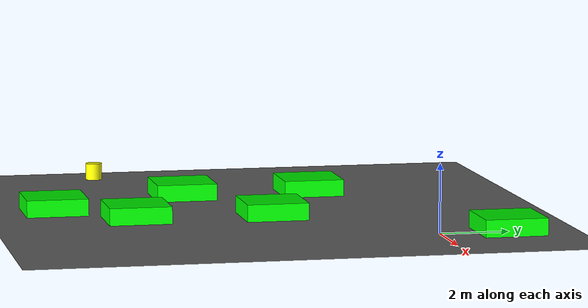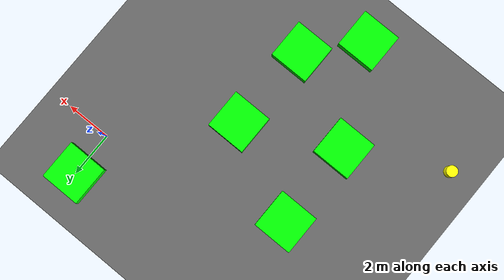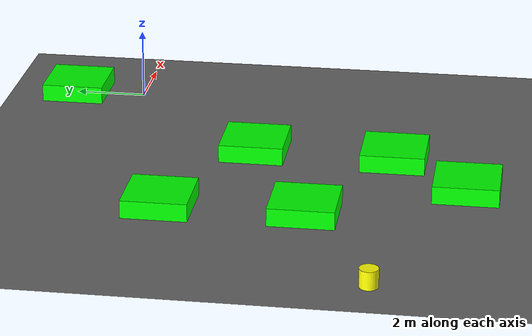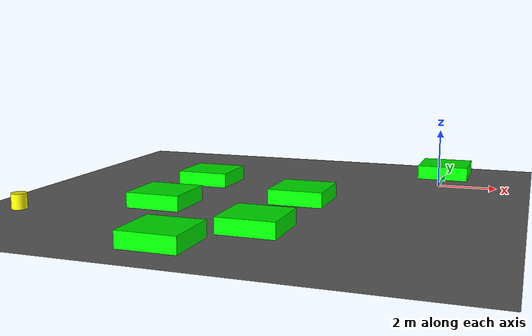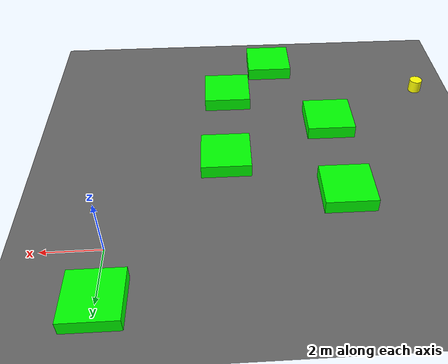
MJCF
<mujoco model="lvl4_standard_obs6_d3long_seed130">
    <compiler angle="degree" coordinate="local" inertiafromgeom="true"/>
    <option integrator="RK4" timestep="0.01"/>

    <asset>
        <texture builtin="gradient" height="100" rgb1="0.6 0.8 1" rgb2="0 0 0" type="skybox" width="100"/>
        <texture name="floor_texture" type="2d" builtin="checker" width="100" height="100" rgb1="0 0 0" rgb2="0.8 0.8 0.8"/>
        <material name="MatPlane" reflectance="0.5" shininess="1" specular="1" texrepeat="10 10" texture="floor_texture"/>
    </asset>

    <!-- Excluding the contact between the agent and the goal, and the agent and the floor -->
    <contact>
        <exclude body1="agent" body2="goal"/>
        <exclude body1 = "agent" body2 = "floor"/>
    </contact>

    <extension>
        <plugin plugin = "mujoco.pid">
            <instance name = "pid1">
                <config key="kp" value="2"/>
                <config key="ki" value="0"/>
                <config key="kd" value="55"/>
            </instance>
        </plugin>
    </extension>

    <worldbody>
        <light cutoff="100" diffuse="1 1 1" dir="-0 0 -1.3" directional="true" exponent="1" pos="0 0 1.3" specular=".1 .1 .1"/>
        <body name="floor" pos="0 0 0">
            <geom name="floor_geom" type="plane" size="20 20 0.1" material="MatPlane"/>
        </body>

                <body name="goal" pos="0.0000 0.0000 0">
            <geom name="goal_geom" type="plane" size="0.5 0.5 1" pos="0 0 0" rgba="1 0 0 1"/>
        </body>

                <body name="agent" pos="-12.0000 -8.0000 0.250">
            <joint name="j1" type="slide" axis ="1 0 0 "/>
            <joint name="j2" type="slide" axis ="0 1 0 "/>
            <geom name="agent_geom" type="cylinder" size="0.25 0.25 0.250" rgba="1 1 0 1"/>
        </body>

        <body name="obstacle1" pos="-0.0127 1.9918 0.250">  <geom name="obstacle1_geom" type="box" size="0.9000 0.9000 0.250" rgba="0 1 0 1"/></body>
        <body name="obstacle2" pos="-8.0235 -2.0269 0.250">  <geom name="obstacle2_geom" type="box" size="0.9000 0.9000 0.250" rgba="0 1 0 1"/></body>
        <body name="obstacle3" pos="-3.9146 -3.9782 0.250">  <geom name="obstacle3_geom" type="box" size="0.9000 0.9000 0.250" rgba="0 1 0 1"/></body>
        <body name="obstacle4" pos="-7.9683 -5.9046 0.250">  <geom name="obstacle4_geom" type="box" size="0.9000 0.9000 0.250" rgba="0 1 0 1"/></body>
        <body name="obstacle5" pos="-4.0610 -7.9327 0.250">  <geom name="obstacle5_geom" type="box" size="0.9000 0.9000 0.250" rgba="0 1 0 1"/></body>
        <body name="obstacle6" pos="-5.9228 -10.0633 0.250">  <geom name="obstacle6_geom" type="box" size="0.9000 0.9000 0.250" rgba="0 1 0 1"/></body>

    </worldbody>

    <sensor>
<!-- SENSORS -->

        <distance name="dist1" geom1="agent_geom" geom2="obstacle1_geom" cutoff="1.5"/>
        <distance name="dist2" geom1="agent_geom" geom2="obstacle2_geom" cutoff="1.5"/>
        <distance name="dist3" geom1="agent_geom" geom2="obstacle3_geom" cutoff="1.5"/>
        <distance name="dist4" geom1="agent_geom" geom2="obstacle4_geom" cutoff="1.5"/>
        <distance name="dist5" geom1="agent_geom" geom2="obstacle5_geom" cutoff="1.5"/>
        <distance name="dist6" geom1="agent_geom" geom2="obstacle6_geom" cutoff="1.5"/>
</sensor>

    <actuator>
        <plugin joint="j1" plugin="mujoco.pid" instance="pid1" />
        <plugin joint="j2" plugin="mujoco.pid" instance="pid1"/>
    </actuator>
</mujoco>
